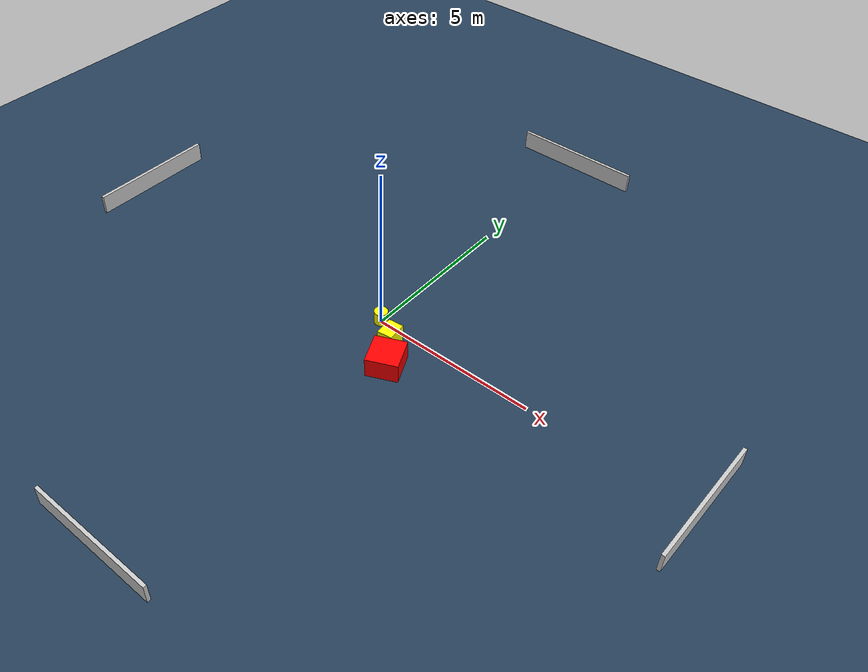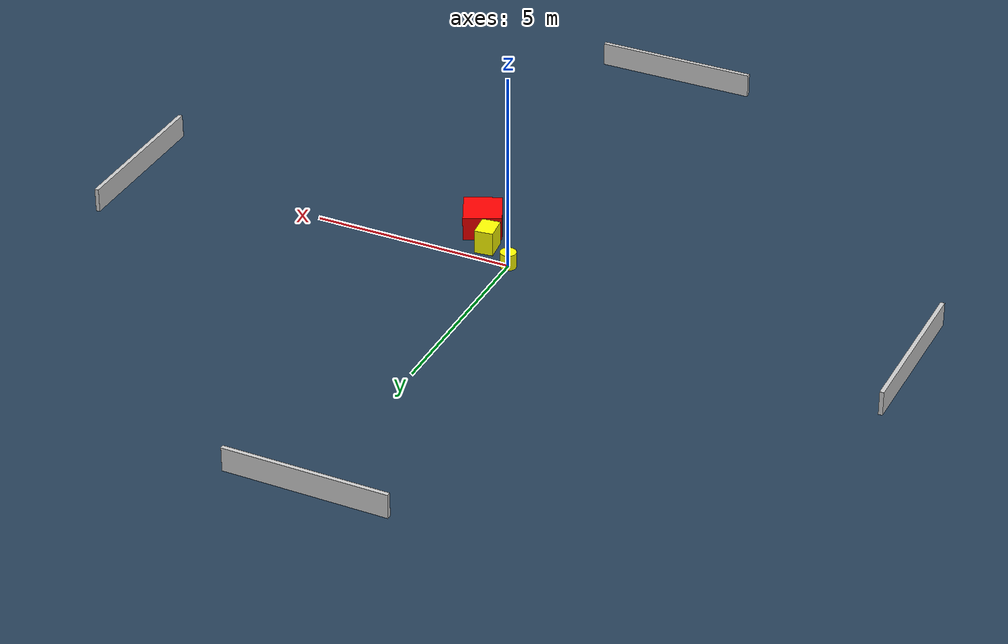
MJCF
<?xml version="1.0" ?>
<mujoco model="generated_environment">
  <option timestep="0.01" integrator="RK4" cone="elliptic"/>
  <default>
    <geom density="1"/>
  </default>
  <asset>
    <texture builtin="gradient" height="3072" name="skybox" rgb1="0.3 0.5 0.7" rgb2="0 0 0" type="skybox" width="512"/>
    <texture builtin="checker" height="300" name="groundplane" rgb1="0.2 0.3 0.4" rgb2="0.1 0.2 0.3" type="2d" width="300"/>
    <material name="groundplane" reflectance="0.2" texrepeat="5 5" texture="groundplane"/>
  </asset>
  <worldbody>
    <light dir="0 0 -1" directional="true" pos="0 0 1.5"/>
    <geom condim="3" friction="0.5 0.005 0.001" material="groundplane" name="floor" pos="0 0 0" size="0 0 0.05" type="plane"/>
    <body name="walls">
      <geom name="wall_1" condim="4" pos="-10.0 0.0 0.3" rgba="0.800000011920929 0.800000011920929 0.800000011920929 1.0" size="0.05 2.0 0.3" type="box"/>
      <geom name="wall_2" condim="4" pos="10.0 0.0 0.3" rgba="0.800000011920929 0.800000011920929 0.800000011920929 1.0" size="0.05 2.0 0.3" type="box"/>
      <geom name="wall_3" condim="4" pos="0.0 -10.0 0.3" rgba="0.800000011920929 0.800000011920929 0.800000011920929 1.0" size="2.0 0.05 0.3" type="box"/>
      <geom name="wall_4" condim="4" pos="0.0 10.0 0.3" rgba="0.800000011920929 0.800000011920929 0.800000011920929 1.0" size="2.0 0.05 0.3" type="box"/>
    </body>
    <body name="robot">
      <joint name="joint_x" type="slide" pos="0 0 0" axis="1 0 0"/>
      <joint name="joint_y" type="slide" pos="0 0 0" axis="0 1 0"/>
      <geom name="robot" type="cylinder" pos="0.0 0.0 0.2" size="0.2 0.2 0.0" mass="5.0" friction="1.0 0.005 0.0001" condim="4" rgba="1.0 1.0 0.0 1.0"/>
    </body>
    <body name="obstacle_1_movable">
      <geom name="obstacle_1_movable" condim="4" pos="0.7926219545835843 -0.5221889365098753 0.3" euler="0 0 186.9151165955306" friction="0.0 0.005 0.001" rgba="1.0 1.0 0.0 1.0" size="0.22764871943720888 0.2920070919837482 0.3" type="box" mass="0.1"/>
      <joint type="free"/>
    </body>
    <body name="obstacle_2_static">
      <geom name="obstacle_2_static" condim="4" pos="1.2653452060721455 -1.2403945202731517 0.3" euler="0 0 114.59478551168195" friction="0.0 0.005 0.001" rgba="1.0 0.0 0.0 1.0" size="0.4849568033900869 0.4684850844025256 0.3" type="box"/>
    </body>
  </worldbody>
  <actuator>
    <motor name="actuator_x" joint="joint_x" gear="1" ctrlrange="-1 1"/>
    <motor name="actuator_y" joint="joint_y" gear="1" ctrlrange="-1 1"/>
  </actuator>
</mujoco>
